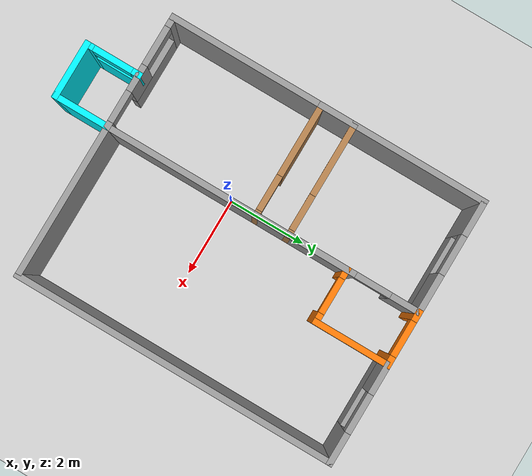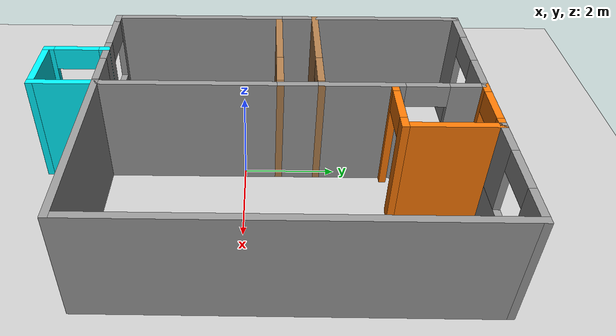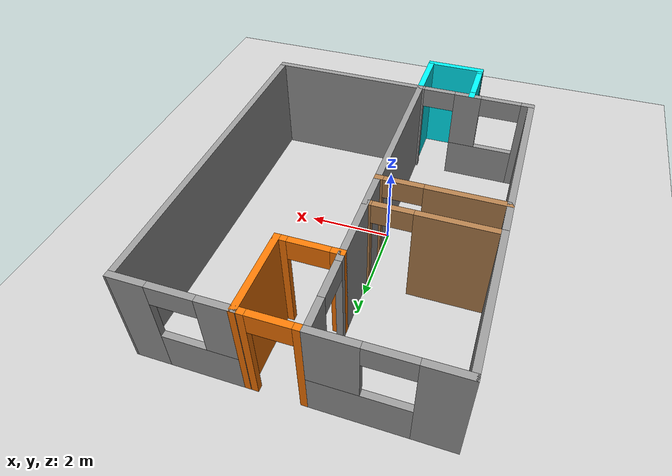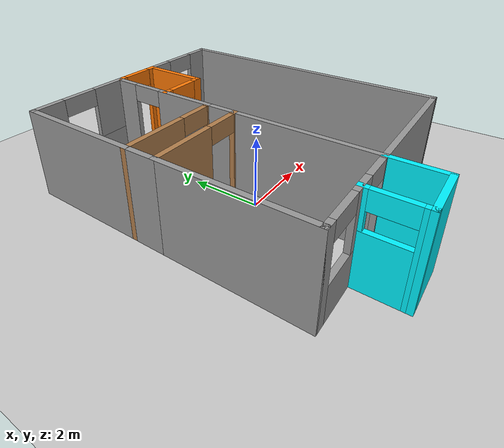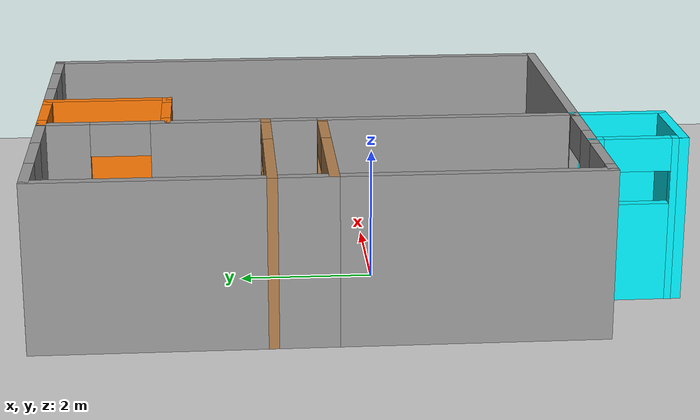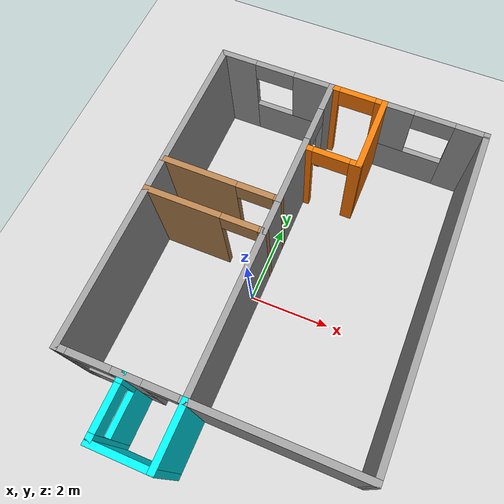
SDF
<sdf version="1.6">
 <world name="default">
  <plugin name="hello" filename="libhello.so"/>
  <light name="sun" type="directional">
   <pose>0 0 10 0 -0 0</pose>
   <diffuse>0.8 0.8 0.8 1</diffuse>
   <specular>0.2 0.2 0.2 1</specular>
   <attenuation>
    <range>1000</range>
    <constant>0.9</constant>
    <linear>0.01</linear>
    <quadratic>0.001</quadratic>
   </attenuation>
   <direction>-0.5 0.1 -0.9</direction>
  </light>
  <model name="ground_plane">
   <static>1</static>
   <link name="link">
    <collision name="collision">
     <geometry><plane><normal>0 0 1</normal><size>100 100</size></plane></geometry>
     <surface><friction><ode><mu>100</mu><mu2>50</mu2></ode></friction></surface>
    </collision>
    <visual name="visual">
     <cast_shadows>0</cast_shadows>
     <geometry><plane><normal>0 0 1</normal><size>100 100</size></plane></geometry>
     <material>
      <script><uri>file://media/materials/scripts/gazebo.material</uri><name>Gazebo/Grey</name></script>
     </material>
    </visual>
   </link>
  </model>
  <gravity>0 0 -9.8</gravity>
  <magnetic_field>6e-06 2.3e-05 -4.2e-05</magnetic_field>
  <atmosphere type="adiabatic"/>
  <physics name="default_physics" default="0" type="ode">
   <max_step_size>0.001</max_step_size>
   <real_time_factor>1</real_time_factor>
   <real_time_update_rate>1000</real_time_update_rate>
  </physics>
  <scene><ambient>0.4 0.4 0.4 1</ambient><background>0.7 0.7 0.7 1</background><shadows>1</shadows></scene>
  <spherical_coordinates>
   <surface_model>EARTH_WGS84</surface_model>
   <latitude_deg>0</latitude_deg>
   <longitude_deg>0</longitude_deg>
   <elevation>0</elevation>
   <heading_deg>0</heading_deg>
  </spherical_coordinates>
  <model name="cozyapato">
   <pose>0.612099 0.24558 0 0 -0 0</pose>
   <link name="Wall_100">
    <collision name="Wall_100_Collision">
     <geometry><box><size>1.5 0.15 2.5</size></box></geometry>
     <pose>0 0 1.25 0 -0 0</pose>
    </collision>
    <visual name="Wall_100_Visual">
     <pose>0 0 1.25 0 -0 0</pose>
     <geometry><box><size>1.5 0.15 2.5</size></box></geometry>
     <material>
      <script><uri>file://media/materials/scripts/gazebo.material</uri><name>Gazebo/Grey</name></script>
      <ambient>0 0.952941 1 1</ambient>
     </material>
     <meta><layer>0</layer></meta>
    </visual>
    <pose>-0.499933 -4.02501 0 0 0 -1.5708</pose>
   </link>
   <link name="Wall_101">
    <collision name="Wall_101_Collision">
     <geometry><box><size>1.5 0.15 2.5</size></box></geometry>
     <pose>0 0 1.25 0 -0 0</pose>
    </collision>
    <visual name="Wall_101_Visual">
     <pose>0 0 1.25 0 -0 0</pose>
     <geometry><box><size>1.5 0.15 2.5</size></box></geometry>
     <material>
      <script><uri>file://media/materials/scripts/gazebo.material</uri><name>Gazebo/Grey</name></script>
      <ambient>0 0.952941 1 1</ambient>
     </material>
     <meta><layer>0</layer></meta>
    </visual>
    <pose>-1.17493 -4.70001 0 0 -0 3.14159</pose>
   </link>
   <link name="Wall_102">
    <pose>-1.84993 -4.02501 0 0 -0 1.5708</pose>
    <visual name="Wall_102_Visual_0">
     <pose>-0.623422 0 1.25 0 -0 0</pose>
     <geometry><box><size>0.253156 0.15 2.5</size></box></geometry>
     <material>
      <script><uri>file://media/materials/scripts/gazebo.material</uri><name>Gazebo/Grey</name></script>
      <ambient>0 0.952941 1 1</ambient>
     </material>
     <meta><layer>0</layer></meta>
    </visual>
    <collision name="Wall_102_Collision_0">
     <geometry><box><size>0.253156 0.15 2.5</size></box></geometry>
     <pose>-0.623422 0 1.25 0 -0 0</pose>
    </collision>
    <visual name="Wall_102_Visual_1">
     <pose>0.126578 0 0.75 0 -0 0</pose>
     <geometry><box><size>1.24684 0.15 1.5</size></box></geometry>
     <material>
      <script><uri>file://media/materials/scripts/gazebo.material</uri><name>Gazebo/Grey</name></script>
      <ambient>0 0.952941 1 1</ambient>
     </material>
     <meta><layer>0</layer></meta>
    </visual>
    <collision name="Wall_102_Collision_1">
     <geometry><box><size>1.24684 0.15 1.5</size></box></geometry>
     <pose>0.126578 0 0.75 0 -0 0</pose>
    </collision>
    <visual name="Wall_102_Visual_2">
     <pose>0.626578 0 2 0 -0 0</pose>
     <geometry><box><size>0.246844 0.15 1</size></box></geometry>
     <material>
      <script><uri>file://media/materials/scripts/gazebo.material</uri><name>Gazebo/Grey</name></script>
      <ambient>0 0.952941 1 1</ambient>
     </material>
     <meta><layer>0</layer></meta>
    </visual>
    <collision name="Wall_102_Collision_2">
     <geometry><box><size>0.246844 0.15 1</size></box></geometry>
     <pose>0.626578 0 2 0 -0 0</pose>
    </collision>
    <visual name="Wall_102_Visual_3">
     <pose>0.003156 0 2.25 0 -0 0</pose>
     <geometry><box><size>1 0.15 0.5</size></box></geometry>
     <material>
      <script><uri>file://media/materials/scripts/gazebo.material</uri><name>Gazebo/Grey</name></script>
      <ambient>0 0.952941 1 1</ambient>
     </material>
     <meta><layer>0</layer></meta>
    </visual>
    <collision name="Wall_102_Collision_3">
     <geometry><box><size>1 0.15 0.5</size></box></geometry>
     <pose>0.003156 0 2.25 0 -0 0</pose>
    </collision>
   </link>
   <link name="Wall_108">
    <pose>0.175067 4.7 0 0 -0 0</pose>
    <visual name="Wall_108_Visual_0">
     <pose>-0.599463 0 1.25 0 -0 0</pose>
     <geometry><box><size>0.301074 0.15 2.5</size></box></geometry>
     <material>
      <script><uri>file://media/materials/scripts/gazebo.material</uri><name>Gazebo/Grey</name></script>
      <ambient>0.996078 0.47451 0.0196078 1</ambient>
     </material>
     <meta><layer>0</layer></meta>
    </visual>
    <collision name="Wall_108_Collision_0">
     <geometry><box><size>0.301074 0.15 2.5</size></box></geometry>
     <pose>-0.599463 0 1.25 0 -0 0</pose>
    </collision>
    <visual name="Wall_108_Visual_1">
     <pose>0.600537 0 1.25 0 -0 0</pose>
     <geometry><box><size>0.298926 0.15 2.5</size></box></geometry>
     <material>
      <script><uri>file://media/materials/scripts/gazebo.material</uri><name>Gazebo/Grey</name></script>
      <ambient>0.996078 0.47451 0.0196078 1</ambient>
     </material>
     <meta><layer>0</layer></meta>
    </visual>
    <collision name="Wall_108_Collision_1">
     <geometry><box><size>0.298926 0.15 2.5</size></box></geometry>
     <pose>0.600537 0 1.25 0 -0 0</pose>
    </collision>
    <visual name="Wall_108_Visual_2">
     <pose>0.001074 0 2.25 0 -0 0</pose>
     <geometry><box><size>0.9 0.15 0.5</size></box></geometry>
     <material>
      <script><uri>file://media/materials/scripts/gazebo.material</uri><name>Gazebo/Grey</name></script>
      <ambient>0.996078 0.47451 0.0196078 1</ambient>
     </material>
     <meta><layer>0</layer></meta>
    </visual>
    <collision name="Wall_108_Collision_2">
     <geometry><box><size>0.9 0.15 0.5</size></box></geometry>
     <pose>0.001074 0 2.25 0 -0 0</pose>
    </collision>
   </link>
   <link name="Wall_109">
    <collision name="Wall_109_Collision">
     <geometry><box><size>2 0.15 2.5</size></box></geometry>
     <pose>0 0 1.25 0 -0 0</pose>
    </collision>
    <visual name="Wall_109_Visual">
     <pose>0 0 1.25 0 -0 0</pose>
     <geometry><box><size>2 0.15 2.5</size></box></geometry>
     <material>
      <script><uri>file://media/materials/scripts/gazebo.material</uri><name>Gazebo/Grey</name></script>
      <ambient>0.996078 0.47451 0.0196078 1</ambient>
     </material>
     <meta><layer>0</layer></meta>
    </visual>
    <pose>0.850067 3.77499 0 0 0 -1.5708</pose>
   </link>
   <link name="Wall_110">
    <pose>0.175067 2.84999 0 0 -0 3.14159</pose>
    <visual name="Wall_110_Visual_0">
     <pose>-0.600722 0 1.25 0 -0 0</pose>
     <geometry><box><size>0.298555 0.15 2.5</size></box></geometry>
     <material>
      <script><uri>file://media/materials/scripts/gazebo.material</uri><name>Gazebo/Grey</name></script>
      <ambient>0.996078 0.47451 0.0196078 1</ambient>
     </material>
     <meta><layer>0</layer></meta>
    </visual>
    <collision name="Wall_110_Collision_0">
     <geometry><box><size>0.298555 0.15 2.5</size></box></geometry>
     <pose>-0.600722 0 1.25 0 -0 0</pose>
    </collision>
    <visual name="Wall_110_Visual_1">
     <pose>0.599278 0 1.25 0 -0 0</pose>
     <geometry><box><size>0.301445 0.15 2.5</size></box></geometry>
     <material>
      <script><uri>file://media/materials/scripts/gazebo.material</uri><name>Gazebo/Grey</name></script>
      <ambient>0.996078 0.47451 0.0196078 1</ambient>
     </material>
     <meta><layer>0</layer></meta>
    </visual>
    <collision name="Wall_110_Collision_1">
     <geometry><box><size>0.301445 0.15 2.5</size></box></geometry>
     <pose>0.599278 0 1.25 0 -0 0</pose>
    </collision>
    <visual name="Wall_110_Visual_2">
     <pose>-0.001445 0 2.25 0 -0 0</pose>
     <geometry><box><size>0.9 0.15 0.5</size></box></geometry>
     <material>
      <script><uri>file://media/materials/scripts/gazebo.material</uri><name>Gazebo/Grey</name></script>
      <ambient>0.996078 0.47451 0.0196078 1</ambient>
     </material>
     <meta><layer>0</layer></meta>
    </visual>
    <collision name="Wall_110_Collision_2">
     <geometry><box><size>0.9 0.15 0.5</size></box></geometry>
     <pose>-0.001445 0 2.25 0 -0 0</pose>
    </collision>
   </link>
   <link name="Wall_112">
    <collision name="Wall_112_Collision">
     <geometry><box><size>3.99985 0.15 2.5</size></box></geometry>
     <pose>0 0 1.25 0 -0 0</pose>
    </collision>
    <visual name="Wall_112_Visual">
     <pose>0 0 1.25 0 -0 0</pose>
     <geometry><box><size>3.99985 0.15 2.5</size></box></geometry>
     <material>
      <script><uri>file://media/materials/scripts/gazebo.material</uri><name>Gazebo/Grey</name></script>
      <ambient>1 1 1 1</ambient>
     </material>
     <meta><layer>0</layer></meta>
    </visual>
    <pose>1.42499 -3.3502 0 0 0 -0.000101</pose>
   </link>
   <link name="Wall_113">
    <collision name="Wall_113_Collision">
     <geometry><box><size>8.2 0.15 2.5</size></box></geometry>
     <pose>0 0 1.25 0 -0 0</pose>
    </collision>
    <visual name="Wall_113_Visual">
     <pose>0 0 1.25 0 -0 0</pose>
     <geometry><box><size>8.2 0.15 2.5</size></box></geometry>
     <material>
      <script><uri>file://media/materials/scripts/gazebo.material</uri><name>Gazebo/Grey</name></script>
      <ambient>1 1 1 1</ambient>
     </material>
     <meta><layer>0</layer></meta>
    </visual>
    <pose>3.34992 0.674605 0 0 -0 1.5708</pose>
   </link>
   <link name="Wall_115">
    <pose>2.09999 4.6998 0 0 -0 3.14144</pose>
    <visual name="Wall_115_Visual_0">
     <pose>-0.912211 0 1.25 0 -0 0</pose>
     <geometry><box><size>0.825433 0.15 2.5</size></box></geometry>
     <material>
      <script><uri>file://media/materials/scripts/gazebo.material</uri><name>Gazebo/Grey</name></script>
      <ambient>1 1 1 1</ambient>
     </material>
     <meta><layer>0</layer></meta>
    </visual>
    <collision name="Wall_115_Collision_0">
     <geometry><box><size>0.825433 0.15 2.5</size></box></geometry>
     <pose>-0.912211 0 1.25 0 -0 0</pose>
    </collision>
    <visual name="Wall_115_Visual_1">
     <pose>0.412716 0 0.5 0 -0 0</pose>
     <geometry><box><size>1.82442 0.15 1</size></box></geometry>
     <material>
      <script><uri>file://media/materials/scripts/gazebo.material</uri><name>Gazebo/Grey</name></script>
      <ambient>1 1 1 1</ambient>
     </material>
     <meta><layer>0</layer></meta>
    </visual>
    <collision name="Wall_115_Collision_1">
     <geometry><box><size>1.82442 0.15 1</size></box></geometry>
     <pose>0.412716 0 0.5 0 -0 0</pose>
    </collision>
    <visual name="Wall_115_Visual_2">
     <pose>0.912716 0 1.75 0 -0 0</pose>
     <geometry><box><size>0.824421 0.15 1.5</size></box></geometry>
     <material>
      <script><uri>file://media/materials/scripts/gazebo.material</uri><name>Gazebo/Grey</name></script>
      <ambient>1 1 1 1</ambient>
     </material>
     <meta><layer>0</layer></meta>
    </visual>
    <collision name="Wall_115_Collision_2">
     <geometry><box><size>0.824421 0.15 1.5</size></box></geometry>
     <pose>0.912716 0 1.75 0 -0 0</pose>
    </collision>
    <visual name="Wall_115_Visual_3">
     <pose>0.000506 0 2.25 0 -0 0</pose>
     <geometry><box><size>1 0.15 0.5</size></box></geometry>
     <material>
      <script><uri>file://media/materials/scripts/gazebo.material</uri><name>Gazebo/Grey</name></script>
      <ambient>1 1 1 1</ambient>
     </material>
     <meta><layer>0</layer></meta>
    </visual>
    <collision name="Wall_115_Collision_3">
     <geometry><box><size>1 0.15 0.5</size></box></geometry>
     <pose>0.000506 0 2.25 0 -0 0</pose>
    </collision>
   </link>
   <link name="Wall_87">
    <pose>-1.92493 4.7 0 0 -0 0</pose>
    <visual name="Wall_87_Visual_0">
     <pose>-1.02631 0 1.25 0 -0 0</pose>
     <geometry><box><size>0.947379 0.15 2.5</size></box></geometry>
     <material>
      <script><uri>file://media/materials/scripts/gazebo.material</uri><name>Gazebo/Grey</name></script>
      <ambient>1 1 1 1</ambient>
     </material>
     <meta><layer>0</layer></meta>
    </visual>
    <collision name="Wall_87_Collision_0">
     <geometry><box><size>0.947379 0.15 2.5</size></box></geometry>
     <pose>-1.02631 0 1.25 0 -0 0</pose>
    </collision>
    <visual name="Wall_87_Visual_1">
     <pose>0.473689 0 0.5 0 -0 0</pose>
     <geometry><box><size>2.05262 0.15 1</size></box></geometry>
     <material>
      <script><uri>file://media/materials/scripts/gazebo.material</uri><name>Gazebo/Grey</name></script>
      <ambient>1 1 1 1</ambient>
     </material>
     <meta><layer>0</layer></meta>
    </visual>
    <collision name="Wall_87_Collision_1">
     <geometry><box><size>2.05262 0.15 1</size></box></geometry>
     <pose>0.473689 0 0.5 0 -0 0</pose>
    </collision>
    <visual name="Wall_87_Visual_2">
     <pose>0.973689 0 1.75 0 -0 0</pose>
     <geometry><box><size>1.05262 0.15 1.5</size></box></geometry>
     <material>
      <script><uri>file://media/materials/scripts/gazebo.material</uri><name>Gazebo/Grey</name></script>
      <ambient>1 1 1 1</ambient>
     </material>
     <meta><layer>0</layer></meta>
    </visual>
    <collision name="Wall_87_Collision_2">
     <geometry><box><size>1.05262 0.15 1.5</size></box></geometry>
     <pose>0.973689 0 1.75 0 -0 0</pose>
    </collision>
    <visual name="Wall_87_Visual_3">
     <pose>-0.052621 0 2.25 0 -0 0</pose>
     <geometry><box><size>1 0.15 0.5</size></box></geometry>
     <material>
      <script><uri>file://media/materials/scripts/gazebo.material</uri><name>Gazebo/Grey</name></script>
      <ambient>1 1 1 1</ambient>
     </material>
     <meta><layer>0</layer></meta>
    </visual>
    <collision name="Wall_87_Collision_3">
     <geometry><box><size>1 0.15 0.5</size></box></geometry>
     <pose>-0.052621 0 2.25 0 -0 0</pose>
    </collision>
   </link>
   <link name="Wall_88">
    <pose>-0.499933 3.02499 0 0 0 -1.5708</pose>
    <visual name="Wall_88_Visual_0">
     <pose>-1.35034 0 1.25 0 -0 0</pose>
     <geometry><box><size>0.799327 0.15 2.5</size></box></geometry>
     <material>
      <script><uri>file://media/materials/scripts/gazebo.material</uri><name>Gazebo/Grey</name></script>
      <ambient>1 1 1 1</ambient>
     </material>
     <meta><layer>0</layer></meta>
    </visual>
    <collision name="Wall_88_Collision_0">
     <geometry><box><size>0.799327 0.15 2.5</size></box></geometry>
     <pose>-1.35034 0 1.25 0 -0 0</pose>
    </collision>
    <visual name="Wall_88_Visual_1">
     <pose>0.849663 0 1.25 0 -0 0</pose>
     <geometry><box><size>1.80067 0.15 2.5</size></box></geometry>
     <material>
      <script><uri>file://media/materials/scripts/gazebo.material</uri><name>Gazebo/Grey</name></script>
      <ambient>1 1 1 1</ambient>
     </material>
     <meta><layer>0</layer></meta>
    </visual>
    <collision name="Wall_88_Collision_1">
     <geometry><box><size>1.80067 0.15 2.5</size></box></geometry>
     <pose>0.849663 0 1.25 0 -0 0</pose>
    </collision>
    <visual name="Wall_88_Visual_2">
     <pose>-0.500673 0 2.25 0 -0 0</pose>
     <geometry><box><size>0.9 0.15 0.5</size></box></geometry>
     <material>
      <script><uri>file://media/materials/scripts/gazebo.material</uri><name>Gazebo/Grey</name></script>
      <ambient>1 1 1 1</ambient>
     </material>
     <meta><layer>0</layer></meta>
    </visual>
    <collision name="Wall_88_Collision_2">
     <geometry><box><size>0.9 0.15 0.5</size></box></geometry>
     <pose>-0.500673 0 2.25 0 -0 0</pose>
    </collision>
   </link>
   <link name="Wall_89">
    <pose>-1.92493 1.34999 0 0 -0 3.14159</pose>
    <visual name="Wall_89_Visual_0">
     <pose>-1.4003 0 1.25 0 -0 0</pose>
     <geometry><box><size>0.199399 0.15 2.5</size></box></geometry>
     <material>
      <script><uri>file://media/materials/scripts/gazebo.material</uri><name>Gazebo/Wood</name></script>
      <ambient>1 1 1 1</ambient>
     </material>
     <meta><layer>0</layer></meta>
    </visual>
    <collision name="Wall_89_Collision_0">
     <geometry><box><size>0.199399 0.15 2.5</size></box></geometry>
     <pose>-1.4003 0 1.25 0 -0 0</pose>
    </collision>
    <visual name="Wall_89_Visual_1">
     <pose>0.549699 0 1.25 0 -0 0</pose>
     <geometry><box><size>1.9006 0.15 2.5</size></box></geometry>
     <material>
      <script><uri>file://media/materials/scripts/gazebo.material</uri><name>Gazebo/Wood</name></script>
      <ambient>1 1 1 1</ambient>
     </material>
     <meta><layer>0</layer></meta>
    </visual>
    <collision name="Wall_89_Collision_1">
     <geometry><box><size>1.9006 0.15 2.5</size></box></geometry>
     <pose>0.549699 0 1.25 0 -0 0</pose>
    </collision>
    <visual name="Wall_89_Visual_2">
     <pose>-0.850601 0 2.25 0 -0 0</pose>
     <geometry><box><size>0.9 0.15 0.5</size></box></geometry>
     <material>
      <script><uri>file://media/materials/scripts/gazebo.material</uri><name>Gazebo/Wood</name></script>
      <ambient>1 1 1 1</ambient>
     </material>
     <meta><layer>0</layer></meta>
    </visual>
    <collision name="Wall_89_Collision_2">
     <geometry><box><size>0.9 0.15 0.5</size></box></geometry>
     <pose>-0.850601 0 2.25 0 -0 0</pose>
    </collision>
   </link>
   <link name="Wall_90">
    <collision name="Wall_90_Collision">
     <geometry><box><size>3.5 0.15 2.5</size></box></geometry>
     <pose>0 0 1.25 0 -0 0</pose>
    </collision>
    <visual name="Wall_90_Visual">
     <pose>0 0 1.25 0 -0 0</pose>
     <geometry><box><size>3.5 0.15 2.5</size></box></geometry>
     <material>
      <script><uri>file://media/materials/scripts/gazebo.material</uri><name>Gazebo/Grey</name></script>
      <ambient>1 1 1 1</ambient>
     </material>
     <meta><layer>0</layer></meta>
    </visual>
    <pose>-3.34993 3.02499 0 0 -0 1.5708</pose>
   </link>
   <link name="Wall_92">
    <collision name="Wall_92_Collision">
     <geometry><box><size>1 0.15 2.5</size></box></geometry>
     <pose>0 0 1.25 0 -0 0</pose>
    </collision>
    <visual name="Wall_92_Visual">
     <pose>0 0 1.25 0 -0 0</pose>
     <geometry><box><size>1 0.15 2.5</size></box></geometry>
     <material>
      <script><uri>file://media/materials/scripts/gazebo.material</uri><name>Gazebo/Grey</name></script>
      <ambient>1 1 1 1</ambient>
     </material>
     <meta><layer>0</layer></meta>
    </visual>
    <pose>-3.34993 0.924994 0 0 0 -1.5708</pose>
   </link>
   <link name="Wall_93">
    <pose>-1.92493 0.499994 0 0 -0 0</pose>
    <visual name="Wall_93_Visual_0">
     <pose>-0.551343 0 1.25 0 -0 0</pose>
     <geometry><box><size>1.89731 0.15 2.5</size></box></geometry>
     <material>
      <script><uri>file://media/materials/scripts/gazebo.material</uri><name>Gazebo/Wood</name></script>
      <ambient>1 1 1 1</ambient>
     </material>
     <meta><layer>0</layer></meta>
    </visual>
    <collision name="Wall_93_Collision_0">
     <geometry><box><size>1.89731 0.15 2.5</size></box></geometry>
     <pose>-0.551343 0 1.25 0 -0 0</pose>
    </collision>
    <visual name="Wall_93_Visual_1">
     <pose>1.39866 0 1.25 0 -0 0</pose>
     <geometry><box><size>0.202686 0.15 2.5</size></box></geometry>
     <material>
      <script><uri>file://media/materials/scripts/gazebo.material</uri><name>Gazebo/Wood</name></script>
      <ambient>1 1 1 1</ambient>
     </material>
     <meta><layer>0</layer></meta>
    </visual>
    <collision name="Wall_93_Collision_1">
     <geometry><box><size>0.202686 0.15 2.5</size></box></geometry>
     <pose>1.39866 0 1.25 0 -0 0</pose>
    </collision>
    <visual name="Wall_93_Visual_2">
     <pose>0.847314 0 2.25 0 -0 0</pose>
     <geometry><box><size>0.9 0.15 0.5</size></box></geometry>
     <material>
      <script><uri>file://media/materials/scripts/gazebo.material</uri><name>Gazebo/Wood</name></script>
      <ambient>1 1 1 1</ambient>
     </material>
     <meta><layer>0</layer></meta>
    </visual>
    <collision name="Wall_93_Collision_2">
     <geometry><box><size>0.9 0.15 0.5</size></box></geometry>
     <pose>0.847314 0 2.25 0 -0 0</pose>
    </collision>
   </link>
   <link name="Wall_94">
    <collision name="Wall_94_Collision">
     <geometry><box><size>1 0.15 2.5</size></box></geometry>
     <pose>0 0 1.25 0 -0 0</pose>
    </collision>
    <visual name="Wall_94_Visual">
     <pose>0 0 1.25 0 -0 0</pose>
     <geometry><box><size>1 0.15 2.5</size></box></geometry>
     <material>
      <script><uri>file://media/materials/scripts/gazebo.material</uri><name>Gazebo/Grey</name></script>
      <ambient>1 1 1 1</ambient>
     </material>
     <meta><layer>0</layer></meta>
    </visual>
    <pose>-0.499933 0.924994 0 0 -0 1.5708</pose>
   </link>
   <link name="Wall_96">
    <collision name="Wall_96_Collision">
     <geometry><box><size>4 0.15 2.5</size></box></geometry>
     <pose>0 0 1.25 0 -0 0</pose>
    </collision>
    <visual name="Wall_96_Visual">
     <pose>0 0 1.25 0 -0 0</pose>
     <geometry><box><size>4 0.15 2.5</size></box></geometry>
     <material>
      <script><uri>file://media/materials/scripts/gazebo.material</uri><name>Gazebo/Grey</name></script>
      <ambient>1 1 1 1</ambient>
     </material>
     <meta><layer>0</layer></meta>
    </visual>
    <pose>-3.34993 -1.42501 0 0 0 -1.5708</pose>
   </link>
   <link name="Wall_97">
    <pose>-1.92493 -3.35001 0 0 -0 0</pose>
    <visual name="Wall_97_Visual_0">
     <pose>-1.33807 0 1.25 0 -0 0</pose>
     <geometry><box><size>0.323858 0.15 2.5</size></box></geometry>
     <material>
      <script><uri>file://media/materials/scripts/gazebo.material</uri><name>Gazebo/Grey</name></script>
      <ambient>1 1 1 1</ambient>
     </material>
     <meta><layer>0</layer></meta>
    </visual>
    <collision name="Wall_97_Collision_0">
     <geometry><box><size>0.323858 0.15 2.5</size></box></geometry>
     <pose>-1.33807 0 1.25 0 -0 0</pose>
    </collision>
    <visual name="Wall_97_Visual_1">
     <pose>1.40031 0 1.25 0 -0 0</pose>
     <geometry><box><size>0.199375 0.15 2.5</size></box></geometry>
     <material>
      <script><uri>file://media/materials/scripts/gazebo.material</uri><name>Gazebo/Grey</name></script>
      <ambient>1 1 1 1</ambient>
     </material>
     <meta><layer>0</layer></meta>
    </visual>
    <collision name="Wall_97_Collision_1">
     <geometry><box><size>0.199375 0.15 2.5</size></box></geometry>
     <pose>1.40031 0 1.25 0 -0 0</pose>
    </collision>
    <visual name="Wall_97_Visual_2">
     <pose>-0.337758 0 0.5 0 -0 0</pose>
     <geometry><box><size>1.67677 0.15 1</size></box></geometry>
     <material>
      <script><uri>file://media/materials/scripts/gazebo.material</uri><name>Gazebo/Grey</name></script>
      <ambient>1 1 1 1</ambient>
     </material>
     <meta><layer>0</layer></meta>
    </visual>
    <collision name="Wall_97_Collision_2">
     <geometry><box><size>1.67677 0.15 1</size></box></geometry>
     <pose>-0.337758 0 0.5 0 -0 0</pose>
    </collision>
    <visual name="Wall_97_Visual_3">
     <pose>0.162242 0 1.75 0 -0 0</pose>
     <geometry><box><size>0.676767 0.15 1.5</size></box></geometry>
     <material>
      <script><uri>file://media/materials/scripts/gazebo.material</uri><name>Gazebo/Grey</name></script>
      <ambient>1 1 1 1</ambient>
     </material>
     <meta><layer>0</layer></meta>
    </visual>
    <collision name="Wall_97_Collision_3">
     <geometry><box><size>0.676767 0.15 1.5</size></box></geometry>
     <pose>0.162242 0 1.75 0 -0 0</pose>
    </collision>
    <visual name="Wall_97_Visual_4">
     <pose>-0.676142 0 2.25 0 -0 0</pose>
     <geometry><box><size>1 0.15 0.5</size></box></geometry>
     <material>
      <script><uri>file://media/materials/scripts/gazebo.material</uri><name>Gazebo/Grey</name></script>
      <ambient>1 1 1 1</ambient>
     </material>
     <meta><layer>0</layer></meta>
    </visual>
    <collision name="Wall_97_Collision_4">
     <geometry><box><size>1 0.15 0.5</size></box></geometry>
     <pose>-0.676142 0 2.25 0 -0 0</pose>
    </collision>
    <visual name="Wall_97_Visual_5">
     <pose>0.900625 0 2.25 0 -0 0</pose>
     <geometry><box><size>0.8 0.15 0.5</size></box></geometry>
     <material>
      <script><uri>file://media/materials/scripts/gazebo.material</uri><name>Gazebo/Grey</name></script>
      <ambient>1 1 1 1</ambient>
     </material>
     <meta><layer>0</layer></meta>
    </visual>
    <collision name="Wall_97_Collision_5">
     <geometry><box><size>0.8 0.15 0.5</size></box></geometry>
     <pose>0.900625 0 2.25 0 -0 0</pose>
    </collision>
   </link>
   <link name="Wall_98">
    <collision name="Wall_98_Collision">
     <geometry><box><size>4 0.15 2.5</size></box></geometry>
     <pose>0 0 1.25 0 -0 0</pose>
    </collision>
    <visual name="Wall_98_Visual">
     <pose>0 0 1.25 0 -0 0</pose>
     <geometry><box><size>4 0.15 2.5</size></box></geometry>
     <material>
      <script><uri>file://media/materials/scripts/gazebo.material</uri><name>Gazebo/Grey</name></script>
      <ambient>1 1 1 1</ambient>
     </material>
     <meta><layer>0</layer></meta>
    </visual>
    <pose>-0.499933 -1.42501 0 0 -0 1.5708</pose>
   </link>
   <static>1</static>
  </model>
 </world>
</sdf>
